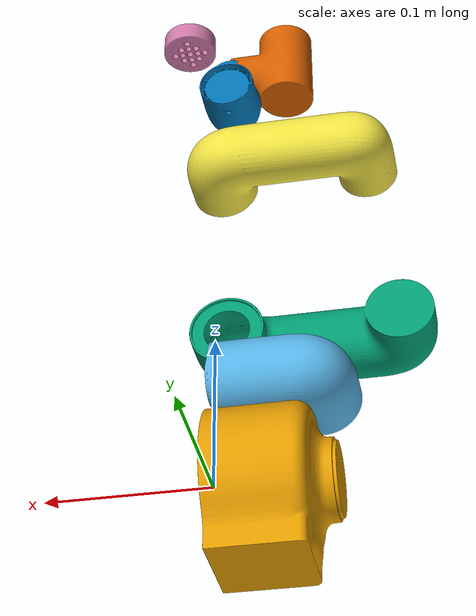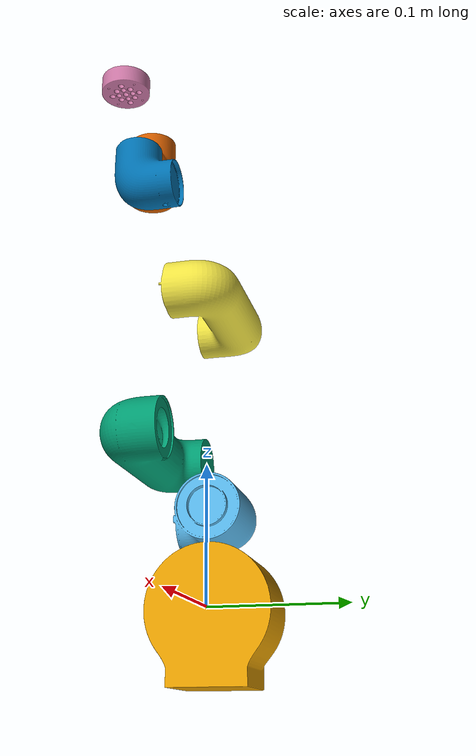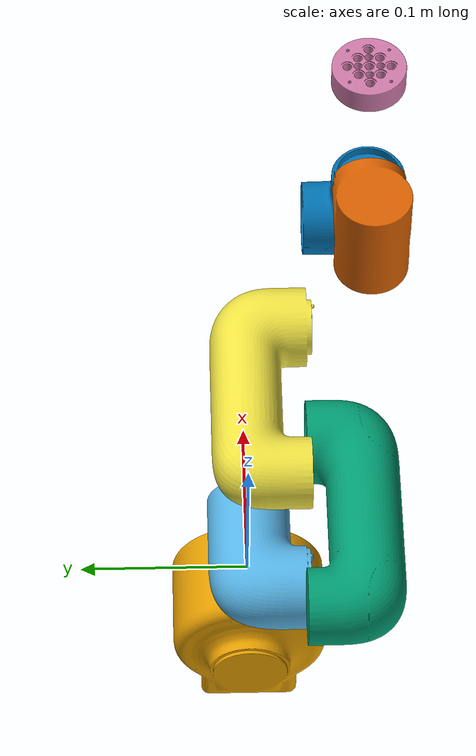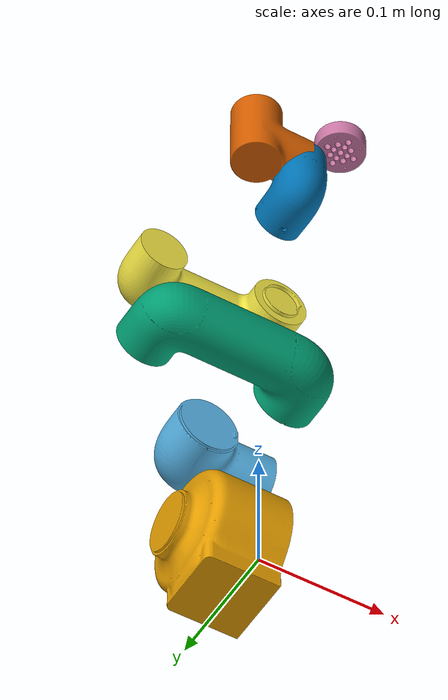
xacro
<?xml version="1.0"?>
<robot  xmlns:xacro="http://www.ros.org/wiki/xacro" name="mycobot_ai_no" >

  <xacro:include filename="$(find gazebo_simulation_ros2)/urdf/mycobot_280_m5.urdf.xacro" />

  <ros2_control name="GazeboSystem" type="system">
    <hardware>
      <plugin>gazebo_ros2_control/GazeboSystem</plugin>
    </hardware>
    <joint name="joint1">
      <command_interface name="position">
        <param name="min">-3.14</param>
        <param name="max">3.14</param>
      </command_interface>
      <state_interface name="position">
        <param name="initial_value">0.0</param>
      </state_interface>
      <state_interface name="velocity"/>
      <state_interface name="effort"/>
    </joint>
    <joint name="joint2">
      <command_interface name="position">
        <param name="min">-3.14</param>
        <param name="max">3.14</param>
      </command_interface>
      <state_interface name="position">
        <param name="initial_value">0.0</param>
      </state_interface>
      <state_interface name="velocity"/>
      <state_interface name="effort"/>
    </joint>
    <joint name="joint3">
      <command_interface name="position">
        <param name="min">-3.14</param>
        <param name="max">3.14</param>
      </command_interface>
      <state_interface name="position">
        <param name="initial_value">0.0</param>
      </state_interface>
      <state_interface name="velocity"/>
      <state_interface name="effort"/>
    </joint>
    <joint name="joint4">
      <command_interface name="position">
        <param name="min">-3.14</param>
        <param name="max">3.14</param>
      </command_interface>
      <state_interface name="position">
        <param name="initial_value">0.0</param>
      </state_interface>
      <state_interface name="velocity"/>
      <state_interface name="effort"/>
    </joint>
    <joint name="joint5">
      <command_interface name="position">
        <param name="min">-3.14</param>
        <param name="max">3.14</param>
      </command_interface>
      <state_interface name="position">
        <param name="initial_value">0.0</param>
      </state_interface>
      <state_interface name="velocity"/>
      <state_interface name="effort"/>
    </joint>
    <joint name="joint6">
      <command_interface name="position">
        <param name="min">-3.14</param>
        <param name="max">3.14</param>
      </command_interface>
      <state_interface name="position">
        <param name="initial_value">0.0</param>
      </state_interface>
      <state_interface name="velocity"/>
      <state_interface name="effort"/>
    </joint>
  </ros2_control>

    <gazebo>
    <plugin filename="libgazebo_ros2_control.so" name="gazebo_ros2_control">
      <robot_param>robot_description</robot_param>
      <robot_param_node>robot_state_publisher</robot_param_node>
      <parameters>$(find gazebo_simulation_ros2)/config/mycobot_move_group_controller.yaml</parameters>
    </plugin>
  </gazebo>

</robot>

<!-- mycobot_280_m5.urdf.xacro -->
<robot  xmlns:xacro="http://www.ros.org/wiki/xacro" name="mycobot_ai_no" >

  <xacro:property name="width" value=".2" />

  <link name="link1">
    <inertial>
    <origin xyz="0 0 0.1" rpy="0 0 0"/>
      <mass value="10"/>
      <inertia
        ixx="0.0" ixy="0.0" ixz="0.0"
        iyy="0.5" iyz="0.0"
        izz="0.0"/>
  </inertial>
    <visual>
      <geometry>
       <mesh filename="file://$(find gazebo_simulation_ros2)/urdf/joint1.dae"/>
      </geometry>
      <origin xyz = "0.0 0 0 " rpy = " 0 0 -1.5708"/>
    </visual>
    <collision>
      <geometry>
       <mesh filename="file://$(find gazebo_simulation_ros2)/urdf/joint1.dae"/>
        </geometry>
        <origin xyz = "0.0 0 0.0 " rpy = " 0 0 -1.5708"/>
    </collision>
  </link>

  <link name="link2">
    <inertial>
    <origin xyz="0 0 0.1" rpy="0 0 0"/>
      <mass value="0.2"/>
      <inertia
        ixx="0.0" ixy="0.0" ixz="0.0"
        iyy="0.5" iyz="0.0"
        izz="0.0"/>
    </inertial>
    <visual>
      <geometry>
       <mesh filename="file://$(find gazebo_simulation_ros2)/urdf/joint2.dae"/>
      </geometry>
      <origin xyz = "0.0 0 -0.061 " rpy = " 0 0 -1.5708"/>
    </visual>
    <collision>
     <geometry>
       <mesh filename="file://$(find gazebo_simulation_ros2)/urdf/joint2.dae"/>
      </geometry>
      <origin xyz = "0.0 0 -0.061 " rpy = " 0 0 -1.5708"/>
    </collision>
  </link>

  <link name="link3">
    <inertial>
    <origin xyz="0 0 0.1" rpy="0 0 0"/>
      <mass value="0.2"/>
      <inertia
        ixx="0.0" ixy="0.0" ixz="0.0"
        iyy="0.5" iyz="0.0"
        izz="0.0"/>
    </inertial>
    <visual>
      <geometry>
       <mesh filename="file://$(find gazebo_simulation_ros2)/urdf/joint3.dae"/>
      </geometry>
    <origin xyz = "0.0 0 0.03256 " rpy = " 0 -1.5708 0"/>
    </visual>
    <collision>
      <geometry>
       <mesh filename="file://$(find gazebo_simulation_ros2)/urdf/joint3.dae"/>
      </geometry>
      <origin xyz = "0.00 0 0.03256 " rpy = " 0 -1.5708 0"/>
    </collision>
  </link>

<link name="link4">
  <inertial>
    <origin xyz="0 0 0.1" rpy="0 0 0"/>
      <mass value="0.2"/>
      <inertia
        ixx="0.0" ixy="0.0" ixz="0.0"
        iyy="0.5" iyz="0.0"
        izz="0.0"/>
  </inertial>
    <visual>
      <geometry>
       <mesh filename="file://$(find gazebo_simulation_ros2)/urdf/joint4.dae"/>
      </geometry>
      <origin xyz = "0.0 0 0.03056 " rpy = " 0 -1.5708 0"/>
    </visual>
    <collision>
      <geometry>
       <mesh filename="file://$(find gazebo_simulation_ros2)/urdf/joint4.dae"/>
      </geometry>
      <origin xyz = "-0.0 0 0.03056 " rpy = " 0 -1.5708 0"/>
    </collision>
  </link>

  <link name="link5">
    <inertial>
    <origin xyz="0 0 0.1" rpy="0 0 0"/>
      <mass value="0.2"/>
      <inertia
        ixx="0.0" ixy="0.0" ixz="0.0"
        iyy="0.5" iyz="0.0"
        izz="0.0"/>
    </inertial>
    <visual>
      <geometry>
       <mesh filename="file://$(find gazebo_simulation_ros2)/urdf/joint5.dae"/>
      </geometry>
      <origin xyz = "0.0 0 -0.0340 " rpy = " -1.5708 0 0"/>
    </visual>
    <collision>
       <geometry>
       <mesh filename="file://$(find gazebo_simulation_ros2)/urdf/joint5.dae"/>
      </geometry>
      <origin xyz = "0.0 0 -0.0340 " rpy = " -1.5708 0 0"/>
    </collision>
  </link>

  <link name="link6">
    <inertial>
    <origin xyz="0 0 0.1" rpy="0 0 0"/>
      <mass value="0.2"/>
      <inertia
        ixx="0.0" ixy="0.0" ixz="0.0"
        iyy="0.5" iyz="0.0"
        izz="0.0"/>
    </inertial>
    <visual>
      <geometry>
       <mesh filename="file://$(find gazebo_simulation_ros2)/urdf/joint6.dae"/>
      </geometry>
    <origin xyz = "-0.00 0.0 -0.044 " rpy = " 0 0 0"/>
    </visual>
    <collision>
      <geometry>
       <mesh filename="file://$(find gazebo_simulation_ros2)/urdf/joint6.dae"/>
      </geometry>
    <origin xyz = "-0.00 0.0 -0.044 " rpy = " 0 0 0"/>
    </collision>
  </link>

  <link name="link6_flange">
    <inertial>
    <origin xyz="0 0 0.1" rpy="0 0 0"/>
      <mass value="0.1"/>
      <inertia
        ixx="0.0" ixy="0.0" ixz="0.0"
        iyy="0.0" iyz="0.0"
        izz="0.0"/>
    </inertial>
    <visual>
      <geometry>
       <mesh filename="file://$(find gazebo_simulation_ros2)/urdf/joint7.dae"/>
      </geometry>
    <origin xyz = "-0.00 0.00 -0.014 " rpy = " 0 0 0"/>
    </visual>
    <collision>
      <geometry>
       <mesh filename="file://$(find gazebo_simulation_ros2)/urdf/joint7.dae"/>
      </geometry>
    <origin xyz = "-0.00 0.00 -0.014 " rpy = " 0 0 0"/>
    </collision>
  </link>

  <joint name="joint1" type="revolute">
    <axis xyz="0 0 1"/>
    <limit effort = "1000.0" lower = "-3.14" upper = "3.14159" velocity = "1.0"/>
    <parent link="link1"/>
    <child link="link2"/>
    <origin xyz= "0 0 0.13156" rpy = "0 0 0"/>
  </joint>

    <joint name="joint2" type="revolute">
    <axis xyz="0 0 1"/>
    <limit effort = "1000.0" lower = "-3.14" upper = "3.14159" velocity = "1.0"/>
    <parent link="link2"/>
    <child link="link3"/>
    <origin xyz= "0 0 -0.001" rpy = "0 1.5708 -1.5708"/>
  </joint>

  <joint name="joint3" type="revolute">
    <axis xyz=" 0 0 1"/>
    <limit effort = "1000.0" lower = "-3.14" upper = "3.14159" velocity = "1.0"/>
    <parent link="link3"/>
    <child link="link4"/>
    <origin xyz= "  -0.1104 0 0   " rpy = "0 0 0"/>
  </joint>

  <joint name="joint4" type="revolute">
    <axis xyz=" 0 0 1"/>
    <limit effort = "1000.0" lower = "-3.14" upper = "3.14159" velocity = "1.0"/>
    <parent link="link4"/>
    <child link="link5"/>
    <origin xyz= "-0.096 0 0.06062" rpy = "0 0 -1.5708"/>
  </joint>

  <joint name="joint5" type="revolute">
    <axis xyz="0 0 1"/>
    <limit effort = "1000.0" lower = "-3.14" upper = "3.14159" velocity = "1.0"/>
    <parent link="link5"/>
    <child link="link6"/>
    <origin xyz= "0 -0.07318 0" rpy = "1.5708 -1.5708 0"/>
  </joint>

  <joint name="joint6" type="revolute">
    <axis xyz="0 0 1"/>
    <limit effort = "1000.0" lower = "-3.14" upper = "3.14159" velocity = "1.0"/>
    <parent link="link6"/>
    <child link="link6_flange"/>
    <origin xyz= "0 0.0486 -0.007" rpy = "-1.5708 0 0"/>
  </joint>

<link name="base_link"/>

<joint name="fixed" type="fixed">
  <parent link="base_link"/>
  <child link="link1"/>
</joint>

</robot>
